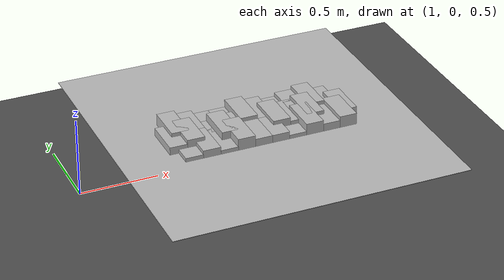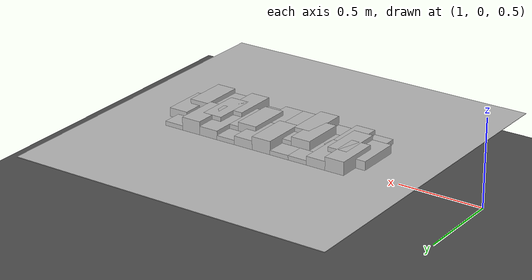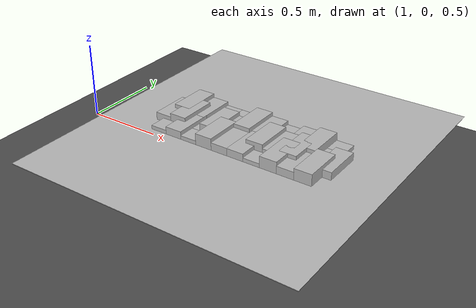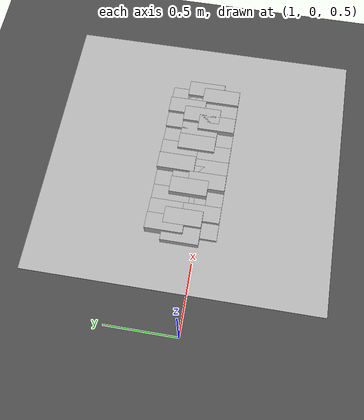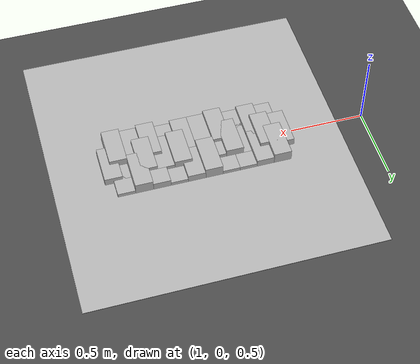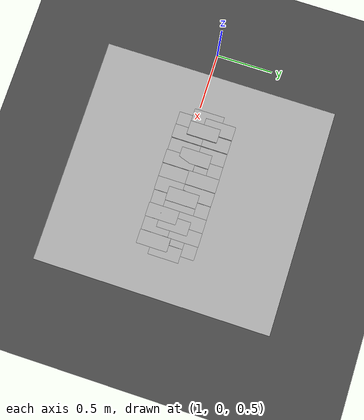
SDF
<sdf version="1.6">
 <world name="default">
  <model name="ground_plane">
   <static>1</static>
   <link name="link">
    <collision name="collision">
     <geometry><plane><normal>0 0 1</normal><size>100 100</size></plane></geometry>
     <surface><friction><ode><mu>100</mu><mu2>50</mu2></ode></friction></surface>
    </collision>
    <visual name="visual">
     <cast_shadows>0</cast_shadows>
     <geometry><plane><normal>0 0 1</normal><size>100 100</size></plane></geometry>
     <material>
      <script><uri>file://media/materials/scripts/gazebo.material</uri><name>Gazebo/Grey</name></script>
     </material>
    </visual>
   </link>
  </model>
  <model name="frc2016_roughterrain_0">
   <link name="link">
    <pose>2.30131 0.070848 -0.073164 0 -0 0</pose>
    <inertial>
     <inertia><ixx>nan</ixx><ixy>0</ixy><ixz>0</ixz><iyy>nan</iyy><iyz>0</iyz><izz>nan</izz></inertia>
     <mass>0</mass>
    </inertial>
    <visual name="platform">
     <pose>0 0 0.08269 0 -0 0</pose>
     <geometry><box><size>1.91826 2.01688 0.003175</size></box></geometry>
    </visual>
    <visual name="row1_block1_sm">
     <pose>0.51435 0.1143 0.09698 0 -0 0</pose>
     <geometry><box><size>0.115452 0.257474 0.0254</size></box></geometry>
    </visual>
    <visual name="row1_block2_lg">
     <pose>0.40005 0.1143 0.12238 0 -0 0</pose>
     <geometry><box><size>0.115452 0.257474 0.0762</size></box></geometry>
    </visual>
    <visual name="row1_block4_sm">
     <pose>0.17145 0.1143 0.09698 0 -0 0</pose>
     <geometry><box><size>0.115452 0.257474 0.0254</size></box></geometry>
    </visual>
    <visual name="row1_block3_md">
     <pose>0.28575 0.1143 0.10968 0 -0 0</pose>
     <geometry><box><size>0.115452 0.257474 0.0508</size></box></geometry>
    </visual>
    <visual name="row1_block5_md">
     <pose>0.05715 0.1143 0.10968 0 -0 0</pose>
     <geometry><box><size>0.115452 0.257474 0.0508</size></box></geometry>
    </visual>
    <visual name="row1_block6_lg">
     <pose>-0.05715 0.1143 0.12238 0 -0 0</pose>
     <geometry><box><size>0.115452 0.257474 0.0762</size></box></geometry>
    </visual>
    <visual name="row1_block7_sm">
     <pose>-0.17145 0.1143 0.09698 0 -0 0</pose>
     <geometry><box><size>0.115452 0.257474 0.0254</size></box></geometry>
    </visual>
    <visual name="row1_block8_sm">
     <pose>-0.28575 0.1143 0.09698 0 -0 0</pose>
     <geometry><box><size>0.115452 0.257474 0.0254</size></box></geometry>
    </visual>
    <visual name="row1_block9_md">
     <pose>-0.40005 0.1143 0.10968 0 -0 0</pose>
     <geometry><box><size>0.115452 0.257474 0.0508</size></box></geometry>
    </visual>
    <visual name="row1_block10_lg">
     <pose>-0.51435 0.1143 0.12238 0 -0 0</pose>
     <geometry><box><size>0.115452 0.257474 0.0762</size></box></geometry>
    </visual>
    <visual name="row2_block1_md">
     <pose>0.5715 0 0.10968 0 -0 0</pose>
     <geometry><box><size>0.115452 0.257474 0.0508</size></box></geometry>
    </visual>
    <visual name="row2_block2_sm">
     <pose>0.4572 0 0.09698 0 -0 0</pose>
     <geometry><box><size>0.115452 0.257474 0.0254</size></box></geometry>
    </visual>
    <visual name="row2_block3_lg">
     <pose>0.3429 0 0.12238 0 -0 0</pose>
     <geometry><box><size>0.115452 0.257474 0.0762</size></box></geometry>
    </visual>
    <visual name="row2_block4_md">
     <pose>0.2286 0 0.10968 0 -0 0</pose>
     <geometry><box><size>0.115452 0.257474 0.0508</size></box></geometry>
    </visual>
    <visual name="row2_block5_lg">
     <pose>0.1143 0 0.12238 0 -0 0</pose>
     <geometry><box><size>0.115452 0.257474 0.0762</size></box></geometry>
    </visual>
    <visual name="row2_block6_sm">
     <pose>0 0 0.09698 0 -0 0</pose>
     <geometry><box><size>0.115452 0.257474 0.0254</size></box></geometry>
    </visual>
    <visual name="row2_block7_md">
     <pose>-0.1143 0 0.10968 0 -0 0</pose>
     <geometry><box><size>0.115452 0.257474 0.0508</size></box></geometry>
    </visual>
    <visual name="row2_block8_lg">
     <pose>-0.2286 0 0.12238 0 -0 0</pose>
     <geometry><box><size>0.115452 0.257474 0.0762</size></box></geometry>
    </visual>
    <visual name="row2_block9_sm">
     <pose>-0.3429 0 0.09698 0 -0 0</pose>
     <geometry><box><size>0.115452 0.257474 0.0254</size></box></geometry>
    </visual>
    <visual name="row2_block10_lg">
     <pose>-0.4572 0 0.12238 0 -0 0</pose>
     <geometry><box><size>0.115452 0.257474 0.0762</size></box></geometry>
    </visual>
    <visual name="row2_block11_md">
     <pose>-0.5715 0 0.10968 0 -0 0</pose>
     <geometry><box><size>0.115452 0.257474 0.0508</size></box></geometry>
    </visual>
    <visual name="row3_block2_md">
     <pose>0.40005 -0.1143 0.10968 0 -0 0</pose>
     <geometry><box><size>0.115452 0.257474 0.0508</size></box></geometry>
    </visual>
    <visual name="row3_block1_lg">
     <pose>0.51435 -0.1143 0.12238 0 -0 0</pose>
     <geometry><box><size>0.115452 0.257474 0.0762</size></box></geometry>
    </visual>
    <visual name="row3_block3_lg">
     <pose>0.28575 -0.1143 0.12238 0 -0 0</pose>
     <geometry><box><size>0.115452 0.257474 0.0762</size></box></geometry>
    </visual>
    <visual name="row3_block4_sm">
     <pose>0.17145 -0.1143 0.09698 0 -0 0</pose>
     <geometry><box><size>0.115452 0.257474 0.0254</size></box></geometry>
    </visual>
    <visual name="row3_block5_md">
     <pose>0.05715 -0.1143 0.10968 0 -0 0</pose>
     <geometry><box><size>0.115452 0.257474 0.0508</size></box></geometry>
    </visual>
    <visual name="row3_block6_md">
     <pose>-0.05715 -0.1143 0.10968 0 -0 0</pose>
     <geometry><box><size>0.115452 0.257474 0.0508</size></box></geometry>
    </visual>
    <visual name="row3_block8_sm">
     <pose>-0.28575 -0.1143 0.09698 0 -0 0</pose>
     <geometry><box><size>0.115452 0.257474 0.0254</size></box></geometry>
    </visual>
    <visual name="row3_block7_lg">
     <pose>-0.17145 -0.1143 0.12238 0 -0 0</pose>
     <geometry><box><size>0.115452 0.257474 0.0762</size></box></geometry>
    </visual>
    <visual name="row3_block9_md">
     <pose>-0.40005 -0.1143 0.10968 0 -0 0</pose>
     <geometry><box><size>0.115452 0.257474 0.0508</size></box></geometry>
    </visual>
    <visual name="row3_block10_sm">
     <pose>-0.51435 -0.1143 0.09698 0 -0 0</pose>
     <geometry><box><size>0.115452 0.257474 0.0254</size></box></geometry>
    </visual>
    <collision name="row2_block5_lg">
     <pose>0.1143 0 0.12238 0 -0 0</pose>
     <geometry><box><size>0.115452 0.257474 0.0762</size></box></geometry>
     <surface>
      <friction>
       <ode><mu>1</mu><mu2>1</mu2><fdir1>0 0 0</fdir1><slip1>0</slip1><slip2>0</slip2></ode>
       <torsional>
        <coefficient>1</coefficient>
        <patch_radius>0</patch_radius>
        <surface_radius>0</surface_radius>
        <use_patch_radius>1</use_patch_radius>
        <ode><slip>0</slip></ode>
       </torsional>
      </friction>
      <bounce><restitution_coefficient>0</restitution_coefficient><threshold>1e+06</threshold></bounce>
      <contact>
       <collide_without_contact>0</collide_without_contact>
       <collide_without_contact_bitmask>1</collide_without_contact_bitmask>
       <collide_bitmask>1</collide_bitmask>
       <ode>
        <soft_cfm>0</soft_cfm>
        <soft_erp>0.2</soft_erp>
        <kp>1e+13</kp>
        <kd>1</kd>
        <max_vel>0.01</max_vel>
        <min_depth>0</min_depth>
       </ode>
       <bullet>
        <split_impulse>1</split_impulse>
        <split_impulse_penetration_threshold>-0.01</split_impulse_penetration_threshold>
        <soft_cfm>0</soft_cfm>
        <soft_erp>0.2</soft_erp>
        <kp>1e+13</kp>
        <kd>1</kd>
       </bullet>
      </contact>
     </surface>
    </collision>
    <collision name="platform">
     <pose>0 0 0.08269 0 -0 0</pose>
     <geometry><box><size>1.91826 2.01688 0.003175</size></box></geometry>
     <surface>
      <friction>
       <ode><mu>1</mu><mu2>1</mu2><fdir1>0 0 0</fdir1><slip1>0</slip1><slip2>0</slip2></ode>
       <torsional>
        <coefficient>1</coefficient>
        <patch_radius>0</patch_radius>
        <surface_radius>0</surface_radius>
        <use_patch_radius>1</use_patch_radius>
        <ode><slip>0</slip></ode>
       </torsional>
      </friction>
      <bounce><restitution_coefficient>0</restitution_coefficient><threshold>1e+06</threshold></bounce>
      <contact>
       <collide_without_contact>0</collide_without_contact>
       <collide_without_contact_bitmask>1</collide_without_contact_bitmask>
       <collide_bitmask>1</collide_bitmask>
       <ode>
        <soft_cfm>0</soft_cfm>
        <soft_erp>0.2</soft_erp>
        <kp>1e+13</kp>
        <kd>1</kd>
        <max_vel>0.01</max_vel>
        <min_depth>0</min_depth>
       </ode>
       <bullet>
        <split_impulse>1</split_impulse>
        <split_impulse_penetration_threshold>-0.01</split_impulse_penetration_threshold>
        <soft_cfm>0</soft_cfm>
        <soft_erp>0.2</soft_erp>
        <kp>1e+13</kp>
        <kd>1</kd>
       </bullet>
      </contact>
     </surface>
    </collision>
    <collision name="row1_block1_sm">
     <pose>0.51435 0.1143 0.09698 0 -0 0</pose>
     <geometry><box><size>0.115452 0.257474 0.0254</size></box></geometry>
     <surface>
      <friction>
       <ode><mu>1</mu><mu2>1</mu2><fdir1>0 0 0</fdir1><slip1>0</slip1><slip2>0</slip2></ode>
       <torsional>
        <coefficient>1</coefficient>
        <patch_radius>0</patch_radius>
        <surface_radius>0</surface_radius>
        <use_patch_radius>1</use_patch_radius>
        <ode><slip>0</slip></ode>
       </torsional>
      </friction>
      <bounce><restitution_coefficient>0</restitution_coefficient><threshold>1e+06</threshold></bounce>
      <contact>
       <collide_without_contact>0</collide_without_contact>
       <collide_without_contact_bitmask>1</collide_without_contact_bitmask>
       <collide_bitmask>1</collide_bitmask>
       <ode>
        <soft_cfm>0</soft_cfm>
        <soft_erp>0.2</soft_erp>
        <kp>1e+13</kp>
        <kd>1</kd>
        <max_vel>0.01</max_vel>
        <min_depth>0</min_depth>
       </ode>
       <bullet>
        <split_impulse>1</split_impulse>
        <split_impulse_penetration_threshold>-0.01</split_impulse_penetration_threshold>
        <soft_cfm>0</soft_cfm>
        <soft_erp>0.2</soft_erp>
        <kp>1e+13</kp>
        <kd>1</kd>
       </bullet>
      </contact>
     </surface>
    </collision>
    <collision name="row1_block3_md">
     <pose>0.28575 0.1143 0.10968 0 -0 0</pose>
     <geometry><box><size>0.115452 0.257474 0.0508</size></box></geometry>
     <surface>
      <friction>
       <ode><mu>1</mu><mu2>1</mu2><fdir1>0 0 0</fdir1><slip1>0</slip1><slip2>0</slip2></ode>
       <torsional>
        <coefficient>1</coefficient>
        <patch_radius>0</patch_radius>
        <surface_radius>0</surface_radius>
        <use_patch_radius>1</use_patch_radius>
        <ode><slip>0</slip></ode>
       </torsional>
      </friction>
      <bounce><restitution_coefficient>0</restitution_coefficient><threshold>1e+06</threshold></bounce>
      <contact>
       <collide_without_contact>0</collide_without_contact>
       <collide_without_contact_bitmask>1</collide_without_contact_bitmask>
       <collide_bitmask>1</collide_bitmask>
       <ode>
        <soft_cfm>0</soft_cfm>
        <soft_erp>0.2</soft_erp>
        <kp>1e+13</kp>
        <kd>1</kd>
        <max_vel>0.01</max_vel>
        <min_depth>0</min_depth>
       </ode>
       <bullet>
        <split_impulse>1</split_impulse>
        <split_impulse_penetration_threshold>-0.01</split_impulse_penetration_threshold>
        <soft_cfm>0</soft_cfm>
        <soft_erp>0.2</soft_erp>
        <kp>1e+13</kp>
        <kd>1</kd>
       </bullet>
      </contact>
     </surface>
    </collision>
    <collision name="row1_block2_lg">
     <pose>0.40005 0.1143 0.12238 0 -0 0</pose>
     <geometry><box><size>0.115452 0.257474 0.0762</size></box></geometry>
     <surface>
      <friction>
       <ode><mu>1</mu><mu2>1</mu2><fdir1>0 0 0</fdir1><slip1>0</slip1><slip2>0</slip2></ode>
       <torsional>
        <coefficient>1</coefficient>
        <patch_radius>0</patch_radius>
        <surface_radius>0</surface_radius>
        <use_patch_radius>1</use_patch_radius>
        <ode><slip>0</slip></ode>
       </torsional>
      </friction>
      <bounce><restitution_coefficient>0</restitution_coefficient><threshold>1e+06</threshold></bounce>
      <contact>
       <collide_without_contact>0</collide_without_contact>
       <collide_without_contact_bitmask>1</collide_without_contact_bitmask>
       <collide_bitmask>1</collide_bitmask>
       <ode>
        <soft_cfm>0</soft_cfm>
        <soft_erp>0.2</soft_erp>
        <kp>1e+13</kp>
        <kd>1</kd>
        <max_vel>0.01</max_vel>
        <min_depth>0</min_depth>
       </ode>
       <bullet>
        <split_impulse>1</split_impulse>
        <split_impulse_penetration_threshold>-0.01</split_impulse_penetration_threshold>
        <soft_cfm>0</soft_cfm>
        <soft_erp>0.2</soft_erp>
        <kp>1e+13</kp>
        <kd>1</kd>
       </bullet>
      </contact>
     </surface>
    </collision>
    <collision name="row1_block5_md">
     <pose>0.05715 0.1143 0.10968 0 -0 0</pose>
     <geometry><box><size>0.115452 0.257474 0.0508</size></box></geometry>
     <surface>
      <friction>
       <ode><mu>1</mu><mu2>1</mu2><fdir1>0 0 0</fdir1><slip1>0</slip1><slip2>0</slip2></ode>
       <torsional>
        <coefficient>1</coefficient>
        <patch_radius>0</patch_radius>
        <surface_radius>0</surface_radius>
        <use_patch_radius>1</use_patch_radius>
        <ode><slip>0</slip></ode>
       </torsional>
      </friction>
      <bounce><restitution_coefficient>0</restitution_coefficient><threshold>1e+06</threshold></bounce>
      <contact>
       <collide_without_contact>0</collide_without_contact>
       <collide_without_contact_bitmask>1</collide_without_contact_bitmask>
       <collide_bitmask>1</collide_bitmask>
       <ode>
        <soft_cfm>0</soft_cfm>
        <soft_erp>0.2</soft_erp>
        <kp>1e+13</kp>
        <kd>1</kd>
        <max_vel>0.01</max_vel>
        <min_depth>0</min_depth>
       </ode>
       <bullet>
        <split_impulse>1</split_impulse>
        <split_impulse_penetration_threshold>-0.01</split_impulse_penetration_threshold>
        <soft_cfm>0</soft_cfm>
        <soft_erp>0.2</soft_erp>
        <kp>1e+13</kp>
        <kd>1</kd>
       </bullet>
      </contact>
     </surface>
    </collision>
    <collision name="row1_block4_sm">
     <pose>0.17145 0.1143 0.09698 0 -0 0</pose>
     <geometry><box><size>0.115452 0.257474 0.0254</size></box></geometry>
     <surface>
      <friction>
       <ode><mu>1</mu><mu2>1</mu2><fdir1>0 0 0</fdir1><slip1>0</slip1><slip2>0</slip2></ode>
       <torsional>
        <coefficient>1</coefficient>
        <patch_radius>0</patch_radius>
        <surface_radius>0</surface_radius>
        <use_patch_radius>1</use_patch_radius>
        <ode><slip>0</slip></ode>
       </torsional>
      </friction>
      <bounce><restitution_coefficient>0</restitution_coefficient><threshold>1e+06</threshold></bounce>
      <contact>
       <collide_without_contact>0</collide_without_contact>
       <collide_without_contact_bitmask>1</collide_without_contact_bitmask>
       <collide_bitmask>1</collide_bitmask>
       <ode>
        <soft_cfm>0</soft_cfm>
        <soft_erp>0.2</soft_erp>
        <kp>1e+13</kp>
        <kd>1</kd>
        <max_vel>0.01</max_vel>
        <min_depth>0</min_depth>
       </ode>
       <bullet>
        <split_impulse>1</split_impulse>
        <split_impulse_penetration_threshold>-0.01</split_impulse_penetration_threshold>
        <soft_cfm>0</soft_cfm>
        <soft_erp>0.2</soft_erp>
        <kp>1e+13</kp>
        <kd>1</kd>
       </bullet>
      </contact>
     </surface>
    </collision>
    <collision name="row1_block6_lg">
     <pose>-0.05715 0.1143 0.12238 0 -0 0</pose>
     <geometry><box><size>0.115452 0.257474 0.0762</size></box></geometry>
     <surface>
      <friction>
       <ode><mu>1</mu><mu2>1</mu2><fdir1>0 0 0</fdir1><slip1>0</slip1><slip2>0</slip2></ode>
       <torsional>
        <coefficient>1</coefficient>
        <patch_radius>0</patch_radius>
        <surface_radius>0</surface_radius>
        <use_patch_radius>1</use_patch_radius>
        <ode><slip>0</slip></ode>
       </torsional>
      </friction>
      <bounce><restitution_coefficient>0</restitution_coefficient><threshold>1e+06</threshold></bounce>
      <contact>
       <collide_without_contact>0</collide_without_contact>
       <collide_without_contact_bitmask>1</collide_without_contact_bitmask>
       <collide_bitmask>1</collide_bitmask>
       <ode>
        <soft_cfm>0</soft_cfm>
        <soft_erp>0.2</soft_erp>
        <kp>1e+13</kp>
        <kd>1</kd>
        <max_vel>0.01</max_vel>
        <min_depth>0</min_depth>
       </ode>
       <bullet>
        <split_impulse>1</split_impulse>
        <split_impulse_penetration_threshold>-0.01</split_impulse_penetration_threshold>
        <soft_cfm>0</soft_cfm>
        <soft_erp>0.2</soft_erp>
        <kp>1e+13</kp>
        <kd>1</kd>
       </bullet>
      </contact>
     </surface>
    </collision>
    <collision name="row1_block7_sm">
     <pose>-0.17145 0.1143 0.09698 0 -0 0</pose>
     <geometry><box><size>0.115452 0.257474 0.0254</size></box></geometry>
     <surface>
      <friction>
       <ode><mu>1</mu><mu2>1</mu2><fdir1>0 0 0</fdir1><slip1>0</slip1><slip2>0</slip2></ode>
       <torsional>
        <coefficient>1</coefficient>
        <patch_radius>0</patch_radius>
        <surface_radius>0</surface_radius>
        <use_patch_radius>1</use_patch_radius>
        <ode><slip>0</slip></ode>
       </torsional>
      </friction>
      <bounce><restitution_coefficient>0</restitution_coefficient><threshold>1e+06</threshold></bounce>
      <contact>
       <collide_without_contact>0</collide_without_contact>
       <collide_without_contact_bitmask>1</collide_without_contact_bitmask>
       <collide_bitmask>1</collide_bitmask>
       <ode>
        <soft_cfm>0</soft_cfm>
        <soft_erp>0.2</soft_erp>
        <kp>1e+13</kp>
        <kd>1</kd>
        <max_vel>0.01</max_vel>
        <min_depth>0</min_depth>
       </ode>
       <bullet>
        <split_impulse>1</split_impulse>
        <split_impulse_penetration_threshold>-0.01</split_impulse_penetration_threshold>
        <soft_cfm>0</soft_cfm>
        <soft_erp>0.2</soft_erp>
        <kp>1e+13</kp>
        <kd>1</kd>
       </bullet>
      </contact>
     </surface>
    </collision>
    <collision name="row1_block8_sm">
     <pose>-0.28575 0.1143 0.09698 0 -0 0</pose>
     <geometry><box><size>0.115452 0.257474 0.0254</size></box></geometry>
     <surface>
      <friction>
       <ode><mu>1</mu><mu2>1</mu2><fdir1>0 0 0</fdir1><slip1>0</slip1><slip2>0</slip2></ode>
       <torsional>
        <coefficient>1</coefficient>
        <patch_radius>0</patch_radius>
        <surface_radius>0</surface_radius>
        <use_patch_radius>1</use_patch_radius>
        <ode><slip>0</slip></ode>
       </torsional>
      </friction>
      <bounce><restitution_coefficient>0</restitution_coefficient><threshold>1e+06</threshold></bounce>
      <contact>
       <collide_without_contact>0</collide_without_contact>
       <collide_without_contact_bitmask>1</collide_without_contact_bitmask>
       <collide_bitmask>1</collide_bitmask>
       <ode>
        <soft_cfm>0</soft_cfm>
        <soft_erp>0.2</soft_erp>
        <kp>1e+13</kp>
        <kd>1</kd>
        <max_vel>0.01</max_vel>
        <min_depth>0</min_depth>
       </ode>
       <bullet>
        <split_impulse>1</split_impulse>
        <split_impulse_penetration_threshold>-0.01</split_impulse_penetration_threshold>
        <soft_cfm>0</soft_cfm>
        <soft_erp>0.2</soft_erp>
        <kp>1e+13</kp>
        <kd>1</kd>
       </bullet>
      </contact>
     </surface>
    </collision>
    <collision name="row1_block10_lg">
     <pose>-0.51435 0.1143 0.12238 0 -0 0</pose>
     <geometry><box><size>0.115452 0.257474 0.0762</size></box></geometry>
     <surface>
      <friction>
       <ode><mu>1</mu><mu2>1</mu2><fdir1>0 0 0</fdir1><slip1>0</slip1><slip2>0</slip2></ode>
       <torsional>
        <coefficient>1</coefficient>
        <patch_radius>0</patch_radius>
        <surface_radius>0</surface_radius>
        <use_patch_radius>1</use_patch_radius>
        <ode><slip>0</slip></ode>
       </torsional>
      </friction>
      <bounce><restitution_coefficient>0</restitution_coefficient><threshold>1e+06</threshold></bounce>
      <contact>
       <collide_without_contact>0</collide_without_contact>
       <collide_without_contact_bitmask>1</collide_without_contact_bitmask>
       <collide_bitmask>1</collide_bitmask>
       <ode>
        <soft_cfm>0</soft_cfm>
        <soft_erp>0.2</soft_erp>
        <kp>1e+13</kp>
        <kd>1</kd>
        <max_vel>0.01</max_vel>
        <min_depth>0</min_depth>
       </ode>
       <bullet>
        <split_impulse>1</split_impulse>
        <split_impulse_penetration_threshold>-0.01</split_impulse_penetration_threshold>
        <soft_cfm>0</soft_cfm>
        <soft_erp>0.2</soft_erp>
        <kp>1e+13</kp>
        <kd>1</kd>
       </bullet>
      </contact>
     </surface>
    </collision>
    <collision name="row1_block9_md">
     <pose>-0.40005 0.1143 0.10968 0 -0 0</pose>
     <geometry><box><size>0.115452 0.257474 0.0508</size></box></geometry>
     <surface>
      <friction>
       <ode><mu>1</mu><mu2>1</mu2><fdir1>0 0 0</fdir1><slip1>0</slip1><slip2>0</slip2></ode>
       <torsional>
        <coefficient>1</coefficient>
        <patch_radius>0</patch_radius>
        <surface_radius>0</surface_radius>
        <use_patch_radius>1</use_patch_radius>
        <ode><slip>0</slip></ode>
       </torsional>
      </friction>
      <bounce><restitution_coefficient>0</restitution_coefficient><threshold>1e+06</threshold></bounce>
      <contact>
       <collide_without_contact>0</collide_without_contact>
       <collide_without_contact_bitmask>1</collide_without_contact_bitmask>
       <collide_bitmask>1</collide_bitmask>
       <ode>
        <soft_cfm>0</soft_cfm>
        <soft_erp>0.2</soft_erp>
        <kp>1e+13</kp>
        <kd>1</kd>
        <max_vel>0.01</max_vel>
        <min_depth>0</min_depth>
       </ode>
       <bullet>
        <split_impulse>1</split_impulse>
        <split_impulse_penetration_threshold>-0.01</split_impulse_penetration_threshold>
        <soft_cfm>0</soft_cfm>
        <soft_erp>0.2</soft_erp>
        <kp>1e+13</kp>
        <kd>1</kd>
       </bullet>
      </contact>
     </surface>
    </collision>
    <collision name="row2_block1_md">
     <pose>0.5715 0 0.10968 0 -0 0</pose>
     <geometry><box><size>0.115452 0.257474 0.0508</size></box></geometry>
     <surface>
      <friction>
       <ode><mu>1</mu><mu2>1</mu2><fdir1>0 0 0</fdir1><slip1>0</slip1><slip2>0</slip2></ode>
       <torsional>
        <coefficient>1</coefficient>
        <patch_radius>0</patch_radius>
        <surface_radius>0</surface_radius>
        <use_patch_radius>1</use_patch_radius>
        <ode><slip>0</slip></ode>
       </torsional>
      </friction>
      <bounce><restitution_coefficient>0</restitution_coefficient><threshold>1e+06</threshold></bounce>
      <contact>
       <collide_without_contact>0</collide_without_contact>
       <collide_without_contact_bitmask>1</collide_without_contact_bitmask>
       <collide_bitmask>1</collide_bitmask>
       <ode>
        <soft_cfm>0</soft_cfm>
        <soft_erp>0.2</soft_erp>
        <kp>1e+13</kp>
        <kd>1</kd>
        <max_vel>0.01</max_vel>
        <min_depth>0</min_depth>
       </ode>
       <bullet>
        <split_impulse>1</split_impulse>
        <split_impulse_penetration_threshold>-0.01</split_impulse_penetration_threshold>
        <soft_cfm>0</soft_cfm>
        <soft_erp>0.2</soft_erp>
        <kp>1e+13</kp>
        <kd>1</kd>
       </bullet>
      </contact>
     </surface>
    </collision>
    <collision name="row2_block2_sm">
     <pose>0.4572 0 0.09698 0 -0 0</pose>
     <geometry><box><size>0.115452 0.257474 0.0254</size></box></geometry>
     <surface>
      <friction>
       <ode><mu>1</mu><mu2>1</mu2><fdir1>0 0 0</fdir1><slip1>0</slip1><slip2>0</slip2></ode>
       <torsional>
        <coefficient>1</coefficient>
        <patch_radius>0</patch_radius>
        <surface_radius>0</surface_radius>
        <use_patch_radius>1</use_patch_radius>
        <ode><slip>0</slip></ode>
       </torsional>
      </friction>
      <bounce><restitution_coefficient>0</restitution_coefficient><threshold>1e+06</threshold></bounce>
      <contact>
       <collide_without_contact>0</collide_without_contact>
       <collide_without_contact_bitmask>1</collide_without_contact_bitmask>
       <collide_bitmask>1</collide_bitmask>
       <ode>
        <soft_cfm>0</soft_cfm>
        <soft_erp>0.2</soft_erp>
        <kp>1e+13</kp>
        <kd>1</kd>
        <max_vel>0.01</max_vel>
        <min_depth>0</min_depth>
       </ode>
       <bullet>
        <split_impulse>1</split_impulse>
        <split_impulse_penetration_threshold>-0.01</split_impulse_penetration_threshold>
        <soft_cfm>0</soft_cfm>
        <soft_erp>0.2</soft_erp>
        <kp>1e+13</kp>
        <kd>1</kd>
       </bullet>
      </contact>
     </surface>
    </collision>
    <collision name="row2_block4_md">
     <pose>0.2286 0 0.10968 0 -0 0</pose>
     <geometry><box><size>0.115452 0.257474 0.0508</size></box></geometry>
     <surface>
      <friction>
       <ode><mu>1</mu><mu2>1</mu2><fdir1>0 0 0</fdir1><slip1>0</slip1><slip2>0</slip2></ode>
       <torsional>
        <coefficient>1</coefficient>
        <patch_radius>0</patch_radius>
        <surface_radius>0</surface_radius>
        <use_patch_radius>1</use_patch_radius>
        <ode><slip>0</slip></ode>
       </torsional>
      </friction>
      <bounce><restitution_coefficient>0</restitution_coefficient><threshold>1e+06</threshold></bounce>
      <contact>
       <collide_without_contact>0</collide_without_contact>
       <collide_without_contact_bitmask>1</collide_without_contact_bitmask>
       <collide_bitmask>1</collide_bitmask>
       <ode>
        <soft_cfm>0</soft_cfm>
        <soft_erp>0.2</soft_erp>
        <kp>1e+13</kp>
        <kd>1</kd>
        <max_vel>0.01</max_vel>
        <min_depth>0</min_depth>
       </ode>
       <bullet>
        <split_impulse>1</split_impulse>
        <split_impulse_penetration_threshold>-0.01</split_impulse_penetration_threshold>
        <soft_cfm>0</soft_cfm>
        <soft_erp>0.2</soft_erp>
        <kp>1e+13</kp>
        <kd>1</kd>
       </bullet>
      </contact>
     </surface>
    </collision>
    <collision name="row2_block3_lg">
     <pose>0.3429 0 0.12238 0 -0 0</pose>
     <geometry><box><size>0.115452 0.257474 0.0762</size></box></geometry>
     <surface>
      <friction>
       <ode><mu>1</mu><mu2>1</mu2><fdir1>0 0 0</fdir1><slip1>0</slip1><slip2>0</slip2></ode>
       <torsional>
        <coefficient>1</coefficient>
        <patch_radius>0</patch_radius>
        <surface_radius>0</surface_radius>
        <use_patch_radius>1</use_patch_radius>
        <ode><slip>0</slip></ode>
       </torsional>
      </friction>
      <bounce><restitution_coefficient>0</restitution_coefficient><threshold>1e+06</threshold></bounce>
      <contact>
       <collide_without_contact>0</collide_without_contact>
       <collide_without_contact_bitmask>1</collide_without_contact_bitmask>
       <collide_bitmask>1</collide_bitmask>
       <ode>
        <soft_cfm>0</soft_cfm>
        <soft_erp>0.2</soft_erp>
        <kp>1e+13</kp>
        <kd>1</kd>
        <max_vel>0.01</max_vel>
        <min_depth>0</min_depth>
       </ode>
       <bullet>
        <split_impulse>1</split_impulse>
        <split_impulse_penetration_threshold>-0.01</split_impulse_penetration_threshold>
        <soft_cfm>0</soft_cfm>
        <soft_erp>0.2</soft_erp>
        <kp>1e+13</kp>
        <kd>1</kd>
       </bullet>
      </contact>
     </surface>
    </collision>
    <collision name="row2_block6_sm">
     <pose>0 0 0.09698 0 -0 0</pose>
     <geometry><box><size>0.115452 0.257474 0.0254</size></box></geometry>
     <surface>
      <friction>
       <ode><mu>1</mu><mu2>1</mu2><fdir1>0 0 0</fdir1><slip1>0</slip1><slip2>0</slip2></ode>
       <torsional>
        <coefficient>1</coefficient>
        <patch_radius>0</patch_radius>
        <surface_radius>0</surface_radius>
        <use_patch_radius>1</use_patch_radius>
        <ode><slip>0</slip></ode>
       </torsional>
      </friction>
      <bounce><restitution_coefficient>0</restitution_coefficient><threshold>1e+06</threshold></bounce>
      <contact>
       <collide_without_contact>0</collide_without_contact>
       <collide_without_contact_bitmask>1</collide_without_contact_bitmask>
       <collide_bitmask>1</collide_bitmask>
       <ode>
        <soft_cfm>0</soft_cfm>
        <soft_erp>0.2</soft_erp>
        <kp>1e+13</kp>
        <kd>1</kd>
        <max_vel>0.01</max_vel>
        <min_depth>0</min_depth>
       </ode>
       <bullet>
        <split_impulse>1</split_impulse>
        <split_impulse_penetration_threshold>-0.01</split_impulse_penetration_threshold>
        <soft_cfm>0</soft_cfm>
        <soft_erp>0.2</soft_erp>
        <kp>1e+13</kp>
        <kd>1</kd>
       </bullet>
      </contact>
     </surface>
    </collision>
    <collision name="row2_block7_md">
     <pose>-0.1143 0 0.10968 0 -0 0</pose>
     <geometry><box><size>0.115452 0.257474 0.0508</size></box></geometry>
     <surface>
      <friction>
       <ode><mu>1</mu><mu2>1</mu2><fdir1>0 0 0</fdir1><slip1>0</slip1><slip2>0</slip2></ode>
       <torsional>
        <coefficient>1</coefficient>
        <patch_radius>0</patch_radius>
        <surface_radius>0</surface_radius>
        <use_patch_radius>1</use_patch_radius>
        <ode><slip>0</slip></ode>
       </torsional>
      </friction>
      <bounce><restitution_coefficient>0</restitution_coefficient><threshold>1e+06</threshold></bounce>
      <contact>
       <collide_without_contact>0</collide_without_contact>
       <collide_without_contact_bitmask>1</collide_without_contact_bitmask>
       <collide_bitmask>1</collide_bitmask>
       <ode>
        <soft_cfm>0</soft_cfm>
        <soft_erp>0.2</soft_erp>
        <kp>1e+13</kp>
        <kd>1</kd>
        <max_vel>0.01</max_vel>
        <min_depth>0</min_depth>
       </ode>
       <bullet>
        <split_impulse>1</split_impulse>
        <split_impulse_penetration_threshold>-0.01</split_impulse_penetration_threshold>
        <soft_cfm>0</soft_cfm>
        <soft_erp>0.2</soft_erp>
        <kp>1e+13</kp>
        <kd>1</kd>
       </bullet>
      </contact>
     </surface>
    </collision>
    <collision name="row2_block10_lg">
     <pose>-0.4572 0 0.12238 0 -0 0</pose>
     <geometry><box><size>0.115452 0.257474 0.0762</size></box></geometry>
     <surface>
      <friction>
       <ode><mu>1</mu><mu2>1</mu2><fdir1>0 0 0</fdir1><slip1>0</slip1><slip2>0</slip2></ode>
       <torsional>
        <coefficient>1</coefficient>
        <patch_radius>0</patch_radius>
        <surface_radius>0</surface_radius>
        <use_patch_radius>1</use_patch_radius>
        <ode><slip>0</slip></ode>
       </torsional>
      </friction>
      <bounce><restitution_coefficient>0</restitution_coefficient><threshold>1e+06</threshold></bounce>
      <contact>
       <collide_without_contact>0</collide_without_contact>
       <collide_without_contact_bitmask>1</collide_without_contact_bitmask>
       <collide_bitmask>1</collide_bitmask>
       <ode>
        <soft_cfm>0</soft_cfm>
        <soft_erp>0.2</soft_erp>
        <kp>1e+13</kp>
        <kd>1</kd>
        <max_vel>0.01</max_vel>
        <min_depth>0</min_depth>
       </ode>
       <bullet>
        <split_impulse>1</split_impulse>
        <split_impulse_penetration_threshold>-0.01</split_impulse_penetration_threshold>
        <soft_cfm>0</soft_cfm>
        <soft_erp>0.2</soft_erp>
        <kp>1e+13</kp>
        <kd>1</kd>
       </bullet>
      </contact>
     </surface>
    </collision>
    <collision name="row2_block8_lg">
     <pose>-0.2286 0 0.12238 0 -0 0</pose>
     <geometry><box><size>0.115452 0.257474 0.0762</size></box></geometry>
     <surface>
      <friction>
       <ode><mu>1</mu><mu2>1</mu2><fdir1>0 0 0</fdir1><slip1>0</slip1><slip2>0</slip2></ode>
       <torsional>
        <coefficient>1</coefficient>
        <patch_radius>0</patch_radius>
        <surface_radius>0</surface_radius>
        <use_patch_radius>1</use_patch_radius>
        <ode><slip>0</slip></ode>
       </torsional>
      </friction>
      <bounce><restitution_coefficient>0</restitution_coefficient><threshold>1e+06</threshold></bounce>
      <contact>
       <collide_without_contact>0</collide_without_contact>
       <collide_without_contact_bitmask>1</collide_without_contact_bitmask>
       <collide_bitmask>1</collide_bitmask>
       <ode>
        <soft_cfm>0</soft_cfm>
        <soft_erp>0.2</soft_erp>
        <kp>1e+13</kp>
        <kd>1</kd>
        <max_vel>0.01</max_vel>
        <min_depth>0</min_depth>
       </ode>
       <bullet>
        <split_impulse>1</split_impulse>
        <split_impulse_penetration_threshold>-0.01</split_impulse_penetration_threshold>
        <soft_cfm>0</soft_cfm>
        <soft_erp>0.2</soft_erp>
        <kp>1e+13</kp>
        <kd>1</kd>
       </bullet>
      </contact>
     </surface>
    </collision>
    <collision name="row2_block9_sm">
     <pose>-0.3429 0 0.09698 0 -0 0</pose>
     <geometry><box><size>0.115452 0.257474 0.0254</size></box></geometry>
     <surface>
      <friction>
       <ode><mu>1</mu><mu2>1</mu2><fdir1>0 0 0</fdir1><slip1>0</slip1><slip2>0</slip2></ode>
       <torsional>
        <coefficient>1</coefficient>
        <patch_radius>0</patch_radius>
        <surface_radius>0</surface_radius>
        <use_patch_radius>1</use_patch_radius>
        <ode><slip>0</slip></ode>
       </torsional>
      </friction>
      <bounce><restitution_coefficient>0</restitution_coefficient><threshold>1e+06</threshold></bounce>
      <contact>
       <collide_without_contact>0</collide_without_contact>
       <collide_without_contact_bitmask>1</collide_without_contact_bitmask>
       <collide_bitmask>1</collide_bitmask>
       <ode>
        <soft_cfm>0</soft_cfm>
        <soft_erp>0.2</soft_erp>
        <kp>1e+13</kp>
        <kd>1</kd>
        <max_vel>0.01</max_vel>
        <min_depth>0</min_depth>
       </ode>
       <bullet>
        <split_impulse>1</split_impulse>
        <split_impulse_penetration_threshold>-0.01</split_impulse_penetration_threshold>
        <soft_cfm>0</soft_cfm>
        <soft_erp>0.2</soft_erp>
        <kp>1e+13</kp>
        <kd>1</kd>
       </bullet>
      </contact>
     </surface>
    </collision>
    <collision name="row2_block11_md">
     <pose>-0.5715 0 0.10968 0 -0 0</pose>
     <geometry><box><size>0.115452 0.257474 0.0508</size></box></geometry>
     <surface>
      <friction>
       <ode><mu>1</mu><mu2>1</mu2><fdir1>0 0 0</fdir1><slip1>0</slip1><slip2>0</slip2></ode>
       <torsional>
        <coefficient>1</coefficient>
        <patch_radius>0</patch_radius>
        <surface_radius>0</surface_radius>
        <use_patch_radius>1</use_patch_radius>
        <ode><slip>0</slip></ode>
       </torsional>
      </friction>
      <bounce><restitution_coefficient>0</restitution_coefficient><threshold>1e+06</threshold></bounce>
      <contact>
       <collide_without_contact>0</collide_without_contact>
       <collide_without_contact_bitmask>1</collide_without_contact_bitmask>
       <collide_bitmask>1</collide_bitmask>
       <ode>
        <soft_cfm>0</soft_cfm>
        <soft_erp>0.2</soft_erp>
        <kp>1e+13</kp>
        <kd>1</kd>
        <max_vel>0.01</max_vel>
        <min_depth>0</min_depth>
       </ode>
       <bullet>
        <split_impulse>1</split_impulse>
        <split_impulse_penetration_threshold>-0.01</split_impulse_penetration_threshold>
        <soft_cfm>0</soft_cfm>
        <soft_erp>0.2</soft_erp>
        <kp>1e+13</kp>
        <kd>1</kd>
       </bullet>
      </contact>
     </surface>
    </collision>
    <collision name="row3_block2_md">
     <pose>0.40005 -0.1143 0.10968 0 -0 0</pose>
     <geometry><box><size>0.115452 0.257474 0.0508</size></box></geometry>
     <surface>
      <friction>
       <ode><mu>1</mu><mu2>1</mu2><fdir1>0 0 0</fdir1><slip1>0</slip1><slip2>0</slip2></ode>
       <torsional>
        <coefficient>1</coefficient>
        <patch_radius>0</patch_radius>
        <surface_radius>0</surface_radius>
        <use_patch_radius>1</use_patch_radius>
        <ode><slip>0</slip></ode>
       </torsional>
      </friction>
      <bounce><restitution_coefficient>0</restitution_coefficient><threshold>1e+06</threshold></bounce>
      <contact>
       <collide_without_contact>0</collide_without_contact>
       <collide_without_contact_bitmask>1</collide_without_contact_bitmask>
       <collide_bitmask>1</collide_bitmask>
       <ode>
        <soft_cfm>0</soft_cfm>
        <soft_erp>0.2</soft_erp>
        <kp>1e+13</kp>
        <kd>1</kd>
        <max_vel>0.01</max_vel>
        <min_depth>0</min_depth>
       </ode>
       <bullet>
        <split_impulse>1</split_impulse>
        <split_impulse_penetration_threshold>-0.01</split_impulse_penetration_threshold>
        <soft_cfm>0</soft_cfm>
        <soft_erp>0.2</soft_erp>
        <kp>1e+13</kp>
        <kd>1</kd>
       </bullet>
      </contact>
     </surface>
    </collision>
    <collision name="row3_block1_lg">
     <pose>0.51435 -0.1143 0.12238 0 -0 0</pose>
     <geometry><box><size>0.115452 0.257474 0.0762</size></box></geometry>
     <surface>
      <friction>
       <ode><mu>1</mu><mu2>1</mu2><fdir1>0 0 0</fdir1><slip1>0</slip1><slip2>0</slip2></ode>
       <torsional>
        <coefficient>1</coefficient>
        <patch_radius>0</patch_radius>
        <surface_radius>0</surface_radius>
        <use_patch_radius>1</use_patch_radius>
        <ode><slip>0</slip></ode>
       </torsional>
      </friction>
      <bounce><restitution_coefficient>0</restitution_coefficient><threshold>1e+06</threshold></bounce>
      <contact>
       <collide_without_contact>0</collide_without_contact>
       <collide_without_contact_bitmask>1</collide_without_contact_bitmask>
       <collide_bitmask>1</collide_bitmask>
       <ode>
        <soft_cfm>0</soft_cfm>
        <soft_erp>0.2</soft_erp>
        <kp>1e+13</kp>
        <kd>1</kd>
        <max_vel>0.01</max_vel>
        <min_depth>0</min_depth>
       </ode>
       <bullet>
        <split_impulse>1</split_impulse>
        <split_impulse_penetration_threshold>-0.01</split_impulse_penetration_threshold>
        <soft_cfm>0</soft_cfm>
        <soft_erp>0.2</soft_erp>
        <kp>1e+13</kp>
        <kd>1</kd>
       </bullet>
      </contact>
     </surface>
    </collision>
    <collision name="row3_block3_lg">
     <pose>0.28575 -0.1143 0.12238 0 -0 0</pose>
     <geometry><box><size>0.115452 0.257474 0.0762</size></box></geometry>
     <surface>
      <friction>
       <ode><mu>1</mu><mu2>1</mu2><fdir1>0 0 0</fdir1><slip1>0</slip1><slip2>0</slip2></ode>
       <torsional>
        <coefficient>1</coefficient>
        <patch_radius>0</patch_radius>
        <surface_radius>0</surface_radius>
        <use_patch_radius>1</use_patch_radius>
        <ode><slip>0</slip></ode>
       </torsional>
      </friction>
      <bounce><restitution_coefficient>0</restitution_coefficient><threshold>1e+06</threshold></bounce>
      <contact>
       <collide_without_contact>0</collide_without_contact>
       <collide_without_contact_bitmask>1</collide_without_contact_bitmask>
       <collide_bitmask>1</collide_bitmask>
       <ode>
        <soft_cfm>0</soft_cfm>
        <soft_erp>0.2</soft_erp>
        <kp>1e+13</kp>
        <kd>1</kd>
        <max_vel>0.01</max_vel>
        <min_depth>0</min_depth>
       </ode>
       <bullet>
        <split_impulse>1</split_impulse>
        <split_impulse_penetration_threshold>-0.01</split_impulse_penetration_threshold>
        <soft_cfm>0</soft_cfm>
        <soft_erp>0.2</soft_erp>
        <kp>1e+13</kp>
        <kd>1</kd>
       </bullet>
      </contact>
     </surface>
    </collision>
    <collision name="row3_block4_sm">
     <pose>0.17145 -0.1143 0.09698 0 -0 0</pose>
     <geometry><box><size>0.115452 0.257474 0.0254</size></box></geometry>
     <surface>
      <friction>
       <ode><mu>1</mu><mu2>1</mu2><fdir1>0 0 0</fdir1><slip1>0</slip1><slip2>0</slip2></ode>
       <torsional>
        <coefficient>1</coefficient>
        <patch_radius>0</patch_radius>
        <surface_radius>0</surface_radius>
        <use_patch_radius>1</use_patch_radius>
        <ode><slip>0</slip></ode>
       </torsional>
      </friction>
      <bounce><restitution_coefficient>0</restitution_coefficient><threshold>1e+06</threshold></bounce>
      <contact>
       <collide_without_contact>0</collide_without_contact>
       <collide_without_contact_bitmask>1</collide_without_contact_bitmask>
       <collide_bitmask>1</collide_bitmask>
       <ode>
        <soft_cfm>0</soft_cfm>
        <soft_erp>0.2</soft_erp>
        <kp>1e+13</kp>
        <kd>1</kd>
        <max_vel>0.01</max_vel>
        <min_depth>0</min_depth>
       </ode>
       <bullet>
        <split_impulse>1</split_impulse>
        <split_impulse_penetration_threshold>-0.01</split_impulse_penetration_threshold>
        <soft_cfm>0</soft_cfm>
        <soft_erp>0.2</soft_erp>
        <kp>1e+13</kp>
        <kd>1</kd>
       </bullet>
      </contact>
     </surface>
    </collision>
    <collision name="row3_block5_md">
     <pose>0.05715 -0.1143 0.10968 0 -0 0</pose>
     <geometry><box><size>0.115452 0.257474 0.0508</size></box></geometry>
     <surface>
      <friction>
       <ode><mu>1</mu><mu2>1</mu2><fdir1>0 0 0</fdir1><slip1>0</slip1><slip2>0</slip2></ode>
       <torsional>
        <coefficient>1</coefficient>
        <patch_radius>0</patch_radius>
        <surface_radius>0</surface_radius>
        <use_patch_radius>1</use_patch_radius>
        <ode><slip>0</slip></ode>
       </torsional>
      </friction>
      <bounce><restitution_coefficient>0</restitution_coefficient><threshold>1e+06</threshold></bounce>
      <contact>
       <collide_without_contact>0</collide_without_contact>
       <collide_without_contact_bitmask>1</collide_without_contact_bitmask>
       <collide_bitmask>1</collide_bitmask>
       <ode>
        <soft_cfm>0</soft_cfm>
        <soft_erp>0.2</soft_erp>
        <kp>1e+13</kp>
        <kd>1</kd>
        <max_vel>0.01</max_vel>
        <min_depth>0</min_depth>
       </ode>
       <bullet>
        <split_impulse>1</split_impulse>
        <split_impulse_penetration_threshold>-0.01</split_impulse_penetration_threshold>
        <soft_cfm>0</soft_cfm>
        <soft_erp>0.2</soft_erp>
        <kp>1e+13</kp>
        <kd>1</kd>
       </bullet>
      </contact>
     </surface>
    </collision>
    <collision name="row3_block7_lg">
     <pose>-0.17145 -0.1143 0.12238 0 -0 0</pose>
     <geometry><box><size>0.115452 0.257474 0.0762</size></box></geometry>
     <surface>
      <friction>
       <ode><mu>1</mu><mu2>1</mu2><fdir1>0 0 0</fdir1><slip1>0</slip1><slip2>0</slip2></ode>
       <torsional>
        <coefficient>1</coefficient>
        <patch_radius>0</patch_radius>
        <surface_radius>0</surface_radius>
        <use_patch_radius>1</use_patch_radius>
        <ode><slip>0</slip></ode>
       </torsional>
      </friction>
      <bounce><restitution_coefficient>0</restitution_coefficient><threshold>1e+06</threshold></bounce>
      <contact>
       <collide_without_contact>0</collide_without_contact>
       <collide_without_contact_bitmask>1</collide_without_contact_bitmask>
       <collide_bitmask>1</collide_bitmask>
       <ode>
        <soft_cfm>0</soft_cfm>
        <soft_erp>0.2</soft_erp>
        <kp>1e+13</kp>
        <kd>1</kd>
        <max_vel>0.01</max_vel>
        <min_depth>0</min_depth>
       </ode>
       <bullet>
        <split_impulse>1</split_impulse>
        <split_impulse_penetration_threshold>-0.01</split_impulse_penetration_threshold>
        <soft_cfm>0</soft_cfm>
        <soft_erp>0.2</soft_erp>
        <kp>1e+13</kp>
        <kd>1</kd>
       </bullet>
      </contact>
     </surface>
    </collision>
    <collision name="row3_block6_md">
     <pose>-0.05715 -0.1143 0.10968 0 -0 0</pose>
     <geometry><box><size>0.115452 0.257474 0.0508</size></box></geometry>
     <surface>
      <friction>
       <ode><mu>1</mu><mu2>1</mu2><fdir1>0 0 0</fdir1><slip1>0</slip1><slip2>0</slip2></ode>
       <torsional>
        <coefficient>1</coefficient>
        <patch_radius>0</patch_radius>
        <surface_radius>0</surface_radius>
        <use_patch_radius>1</use_patch_radius>
        <ode><slip>0</slip></ode>
       </torsional>
      </friction>
      <bounce><restitution_coefficient>0</restitution_coefficient><threshold>1e+06</threshold></bounce>
      <contact>
       <collide_without_contact>0</collide_without_contact>
       <collide_without_contact_bitmask>1</collide_without_contact_bitmask>
       <collide_bitmask>1</collide_bitmask>
       <ode>
        <soft_cfm>0</soft_cfm>
        <soft_erp>0.2</soft_erp>
        <kp>1e+13</kp>
        <kd>1</kd>
        <max_vel>0.01</max_vel>
        <min_depth>0</min_depth>
       </ode>
       <bullet>
        <split_impulse>1</split_impulse>
        <split_impulse_penetration_threshold>-0.01</split_impulse_penetration_threshold>
        <soft_cfm>0</soft_cfm>
        <soft_erp>0.2</soft_erp>
        <kp>1e+13</kp>
        <kd>1</kd>
       </bullet>
      </contact>
     </surface>
    </collision>
    <collision name="row3_block8_sm">
     <pose>-0.28575 -0.1143 0.09698 0 -0 0</pose>
     <geometry><box><size>0.115452 0.257474 0.0254</size></box></geometry>
     <surface>
      <friction>
       <ode><mu>1</mu><mu2>1</mu2><fdir1>0 0 0</fdir1><slip1>0</slip1><slip2>0</slip2></ode>
       <torsional>
        <coefficient>1</coefficient>
        <patch_radius>0</patch_radius>
        <surface_radius>0</surface_radius>
        <use_patch_radius>1</use_patch_radius>
        <ode><slip>0</slip></ode>
       </torsional>
      </friction>
      <bounce><restitution_coefficient>0</restitution_coefficient><threshold>1e+06</threshold></bounce>
      <contact>
       <collide_without_contact>0</collide_without_contact>
       <collide_without_contact_bitmask>1</collide_without_contact_bitmask>
       <collide_bitmask>1</collide_bitmask>
       <ode>
        <soft_cfm>0</soft_cfm>
        <soft_erp>0.2</soft_erp>
        <kp>1e+13</kp>
        <kd>1</kd>
        <max_vel>0.01</max_vel>
        <min_depth>0</min_depth>
       </ode>
       <bullet>
        <split_impulse>1</split_impulse>
        <split_impulse_penetration_threshold>-0.01</split_impulse_penetration_threshold>
        <soft_cfm>0</soft_cfm>
        <soft_erp>0.2</soft_erp>
        <kp>1e+13</kp>
        <kd>1</kd>
       </bullet>
      </contact>
     </surface>
    </collision>
    <collision name="row3_block10_sm">
     <pose>-0.51435 -0.1143 0.09698 0 -0 0</pose>
     <geometry><box><size>0.115452 0.257474 0.0254</size></box></geometry>
     <surface>
      <friction>
       <ode><mu>1</mu><mu2>1</mu2><fdir1>0 0 0</fdir1><slip1>0</slip1><slip2>0</slip2></ode>
       <torsional>
        <coefficient>1</coefficient>
        <patch_radius>0</patch_radius>
        <surface_radius>0</surface_radius>
        <use_patch_radius>1</use_patch_radius>
        <ode><slip>0</slip></ode>
       </torsional>
      </friction>
      <bounce><restitution_coefficient>0</restitution_coefficient><threshold>1e+06</threshold></bounce>
      <contact>
       <collide_without_contact>0</collide_without_contact>
       <collide_without_contact_bitmask>1</collide_without_contact_bitmask>
       <collide_bitmask>1</collide_bitmask>
       <ode>
        <soft_cfm>0</soft_cfm>
        <soft_erp>0.2</soft_erp>
        <kp>1e+13</kp>
        <kd>1</kd>
        <max_vel>0.01</max_vel>
        <min_depth>0</min_depth>
       </ode>
       <bullet>
        <split_impulse>1</split_impulse>
        <split_impulse_penetration_threshold>-0.01</split_impulse_penetration_threshold>
        <soft_cfm>0</soft_cfm>
        <soft_erp>0.2</soft_erp>
        <kp>1e+13</kp>
        <kd>1</kd>
       </bullet>
      </contact>
     </surface>
    </collision>
    <collision name="row3_block9_md">
     <pose>-0.40005 -0.1143 0.10968 0 -0 0</pose>
     <geometry><box><size>0.115452 0.257474 0.0508</size></box></geometry>
     <surface>
      <friction>
       <ode><mu>1</mu><mu2>1</mu2><fdir1>0 0 0</fdir1><slip1>0</slip1><slip2>0</slip2></ode>
       <torsional>
        <coefficient>1</coefficient>
        <patch_radius>0</patch_radius>
        <surface_radius>0</surface_radius>
        <use_patch_radius>1</use_patch_radius>
        <ode><slip>0</slip></ode>
       </torsional>
      </friction>
      <bounce><restitution_coefficient>0</restitution_coefficient><threshold>1e+06</threshold></bounce>
      <contact>
       <collide_without_contact>0</collide_without_contact>
       <collide_without_contact_bitmask>1</collide_without_contact_bitmask>
       <collide_bitmask>1</collide_bitmask>
       <ode>
        <soft_cfm>0</soft_cfm>
        <soft_erp>0.2</soft_erp>
        <kp>1e+13</kp>
        <kd>1</kd>
        <max_vel>0.01</max_vel>
        <min_depth>0</min_depth>
       </ode>
       <bullet>
        <split_impulse>1</split_impulse>
        <split_impulse_penetration_threshold>-0.01</split_impulse_penetration_threshold>
        <soft_cfm>0</soft_cfm>
        <soft_erp>0.2</soft_erp>
        <kp>1e+13</kp>
        <kd>1</kd>
       </bullet>
      </contact>
     </surface>
    </collision>
   </link>
   <static>1</static>
   <pose>-0.10114 0.027351 0.636987 0 -0 0</pose>
  </model>
  <model name="asphalt_plane">
   <static>1</static>
   <link name="link">
    <collision name="collision"><geometry><box><size>20 20 0.1</size></box></geometry></collision>
    <visual name="visual">
     <cast_shadows>0</cast_shadows>
     <geometry><box><size>20 20 0.1</size></box></geometry>
     <material>
      <script>
       <uri>model://asphalt_plane/materials/scripts</uri>
       <uri>model://asphalt_plane/materials/textures</uri>
       <name>vrc/asphalt</name>
      </script>
     </material>
    </visual>
   </link>
   <pose>0.537328 0.29075 -0.013118 0 -0 0</pose>
  </model>
 </world>
</sdf>
